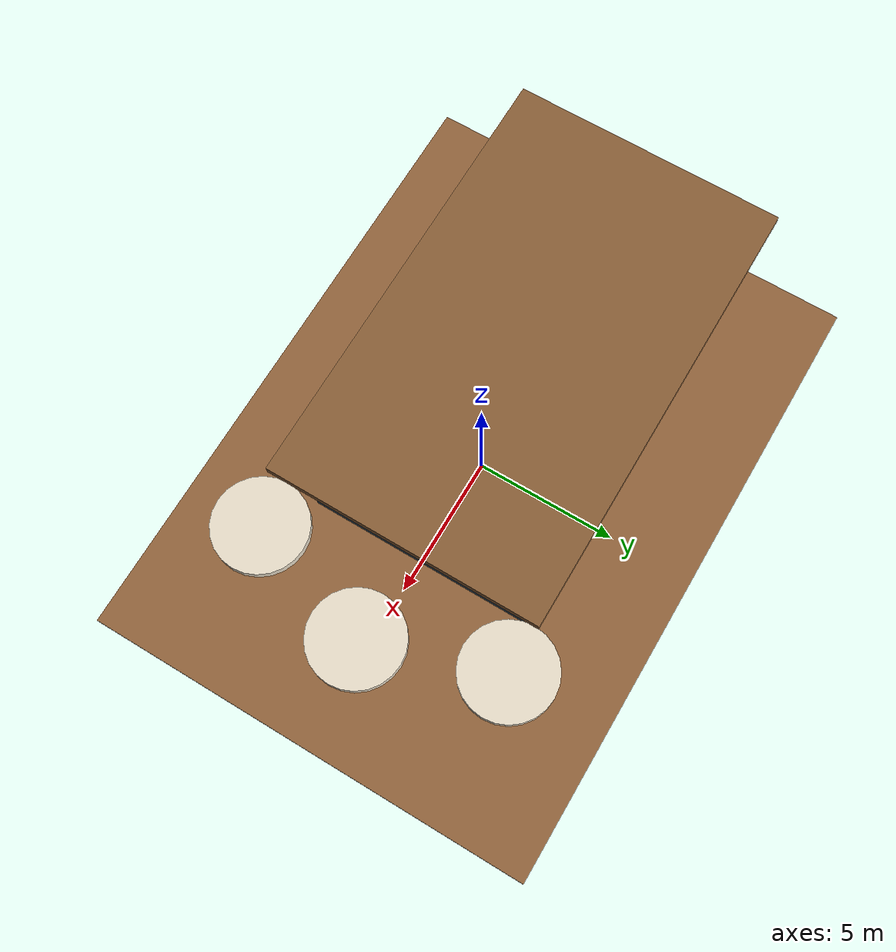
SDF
<?xml version="1.0" ?>
<sdf version="1.8">
  <model name="nikko_glass_cafe_pavilion">
    <static>true</static>
    <link name="pavilion_link">
      <collision name="deck_col"><pose>0 0 0.15 0 0 0</pose><geometry><box><size>22.0 16.0 0.3</size></box></geometry></collision>
      <visual name="deck_vis"><pose>0 0 0.15 0 0 0</pose><geometry><box><size>22.0 16.0 0.3</size></box></geometry><material><ambient>0.48 0.32 0.18 1</ambient><diffuse>0.58 0.40 0.24 1</diffuse></material></visual>
      <collision name="cafe_col"><pose>-3.0 0 2.4 0 0 0</pose><geometry><box><size>14.0 8.0 4.2</size></box></geometry></collision>
      <visual name="cafe_glass"><pose>-3.0 0 2.4 0 0 0</pose><geometry><box><size>14.0 8.0 4.2</size></box></geometry><material><ambient>0.15 0.25 0.35 0.85</ambient><diffuse>0.20 0.35 0.48 0.85</diffuse><specular>0.95 0.98 1.0 1</specular></material></visual>
      <visual name="cafe_roof"><pose>-3.0 0 4.6 0 0 0</pose><geometry><box><size>15.5 9.5 0.35</size></box></geometry><material><ambient>0.42 0.28 0.15 1</ambient><diffuse>0.55 0.38 0.22 1</diffuse><specular>0.7 0.5 0.2 1</specular></material></visual>
      <visual name="table_6_-4"><pose>6.0 -4.5 0.75 0 0 0</pose><geometry><cylinder><radius>0.6</radius><length>0.75</length></cylinder></geometry><material><ambient>0.3 0.3 0.32 1</ambient><diffuse>0.35 0.35 0.38 1</diffuse></material></visual>
      <visual name="umbrella_6_-4"><pose>6.0 -4.5 2.6 0 0 0</pose><geometry><cylinder><radius>1.6</radius><length>0.35</length></cylinder></geometry><material><ambient>0.85 0.82 0.75 1</ambient><diffuse>0.92 0.88 0.80 1</diffuse></material></visual>
      <visual name="table_6_4"><pose>6.0 4.5 0.75 0 0 0</pose><geometry><cylinder><radius>0.6</radius><length>0.75</length></cylinder></geometry><material><ambient>0.3 0.3 0.32 1</ambient><diffuse>0.35 0.35 0.38 1</diffuse></material></visual>
      <visual name="umbrella_6_4"><pose>6.0 4.5 2.6 0 0 0</pose><geometry><cylinder><radius>1.6</radius><length>0.35</length></cylinder></geometry><material><ambient>0.85 0.82 0.75 1</ambient><diffuse>0.92 0.88 0.80 1</diffuse></material></visual>
      <visual name="table_7_0"><pose>7.5 0.0 0.75 0 0 0</pose><geometry><cylinder><radius>0.6</radius><length>0.75</length></cylinder></geometry><material><ambient>0.3 0.3 0.32 1</ambient><diffuse>0.35 0.35 0.38 1</diffuse></material></visual>
      <visual name="umbrella_7_0"><pose>7.5 0.0 2.6 0 0 0</pose><geometry><cylinder><radius>1.6</radius><length>0.35</length></cylinder></geometry><material><ambient>0.85 0.82 0.75 1</ambient><diffuse>0.92 0.88 0.80 1</diffuse></material></visual>
    </link>
  </model>
</sdf>
